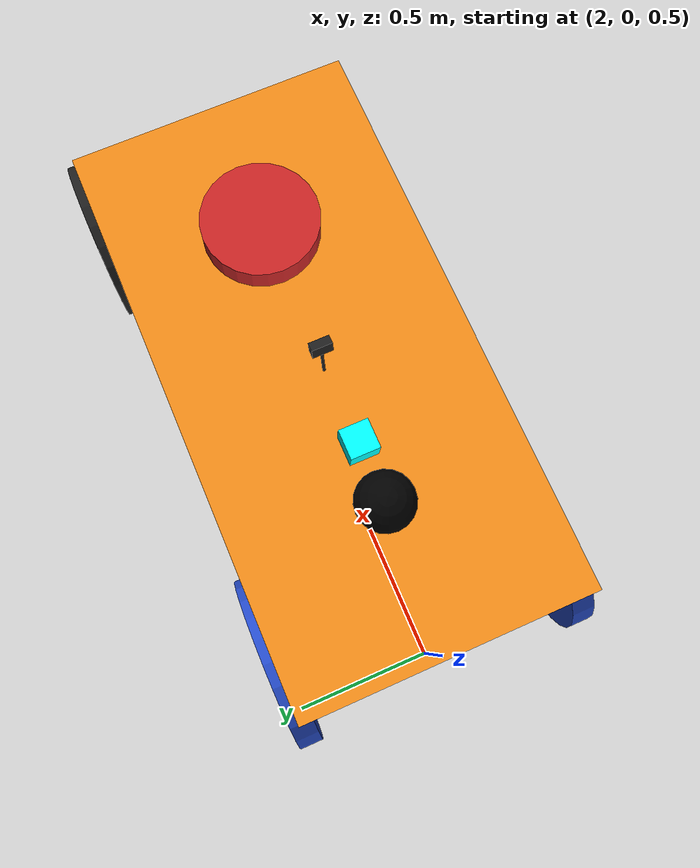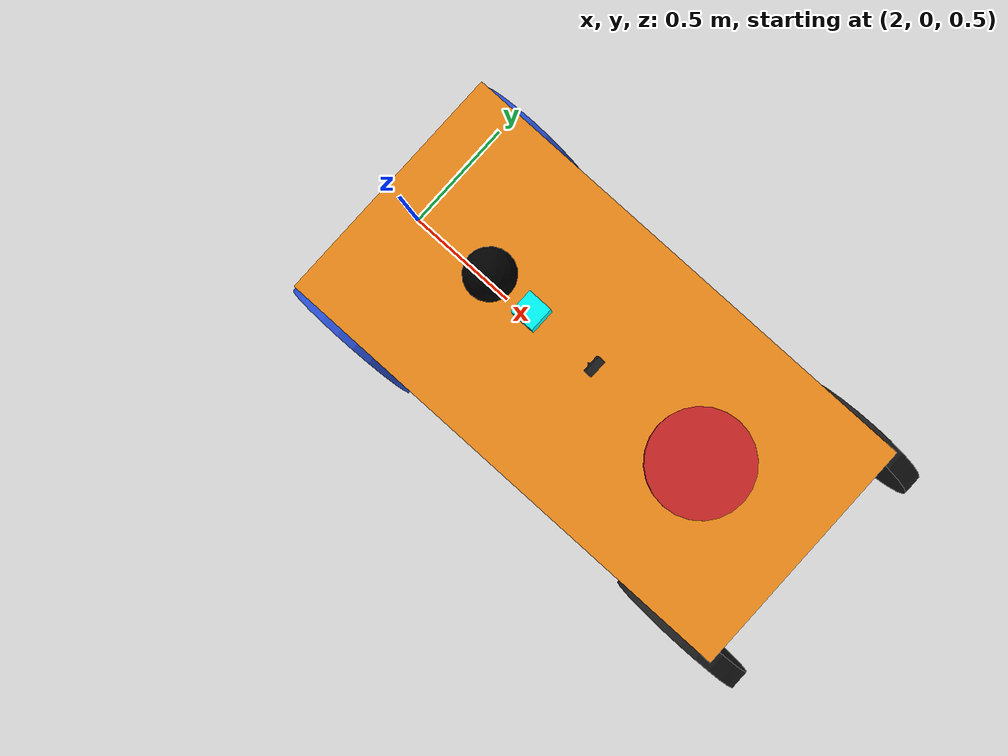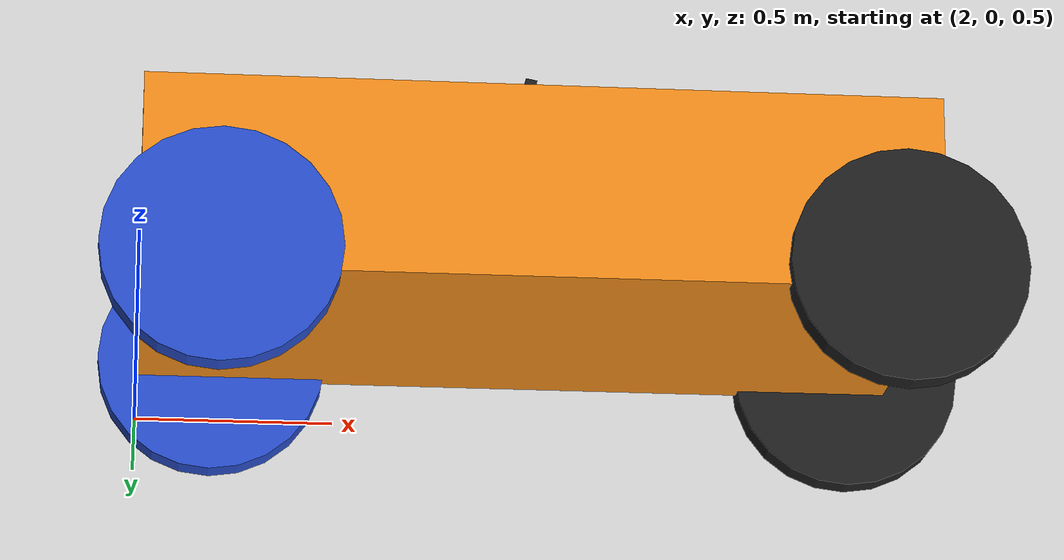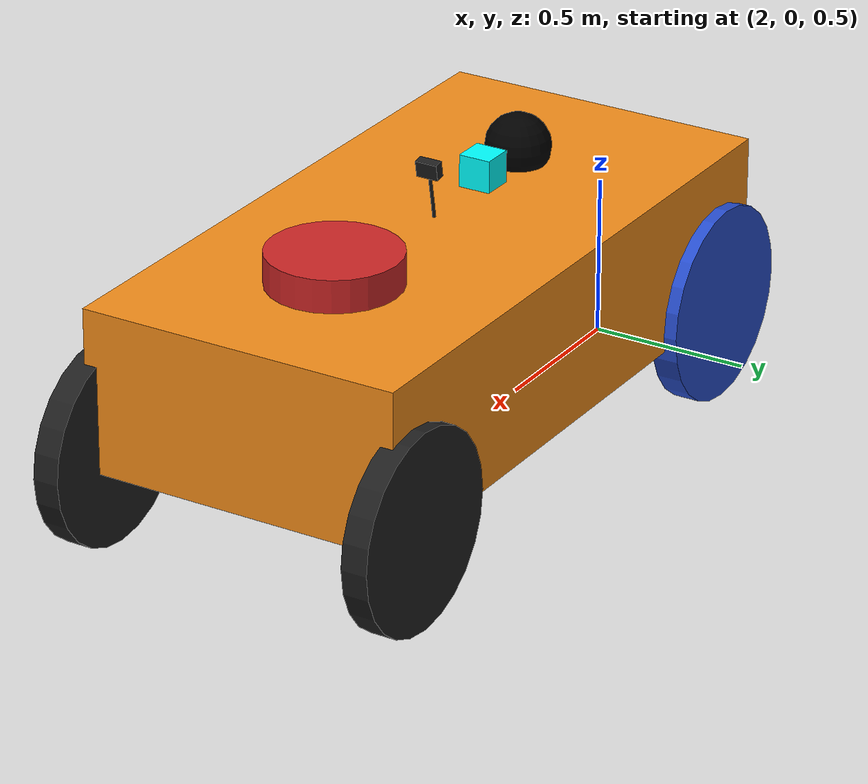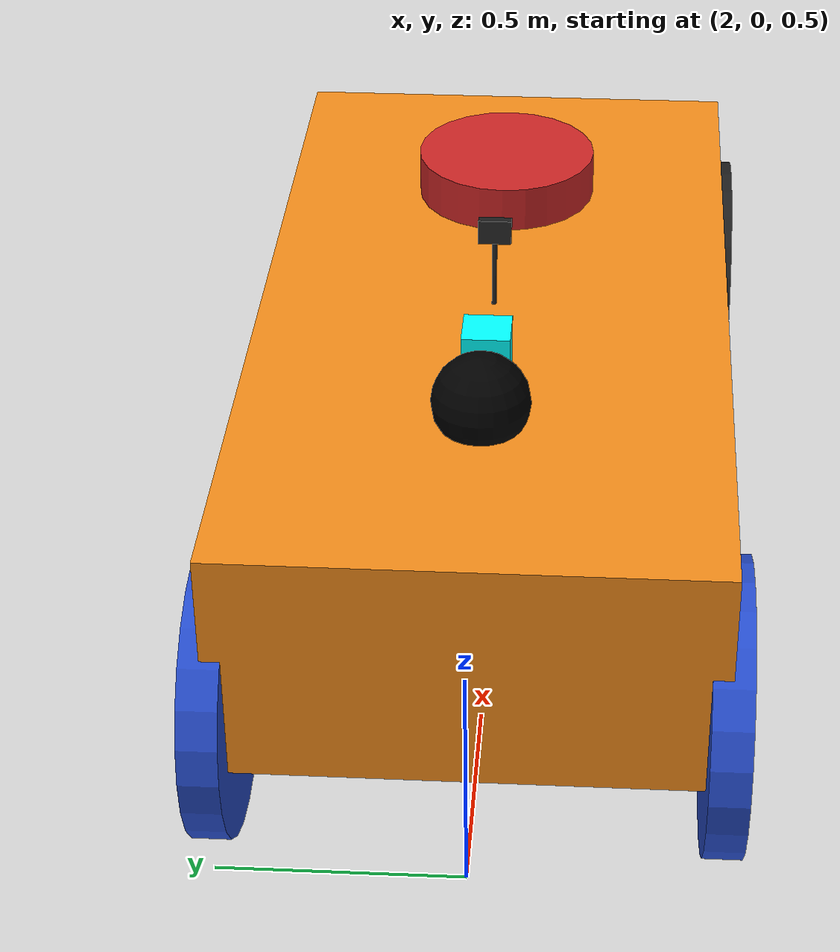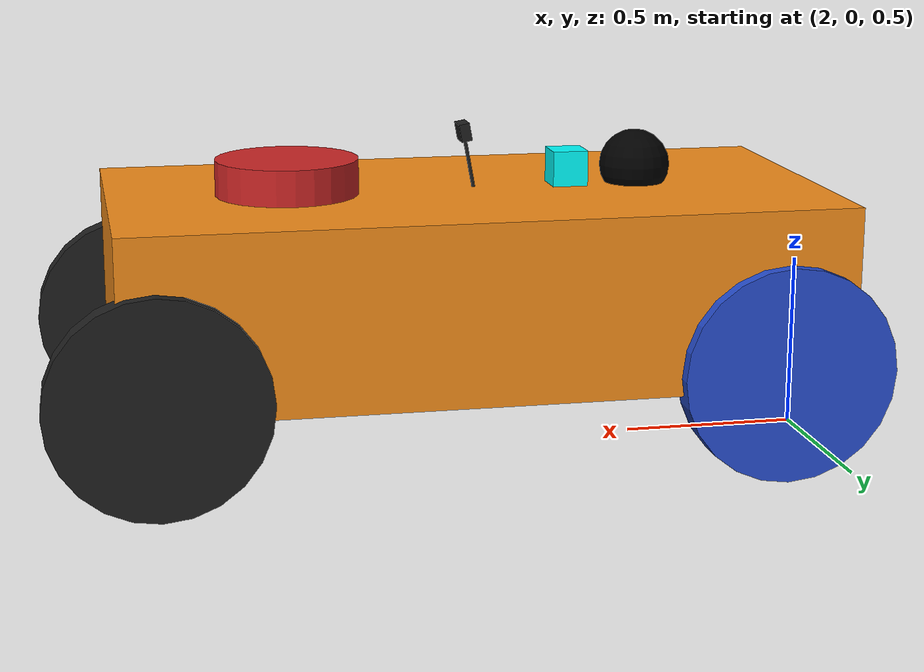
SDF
<sdf version='1.9'>
  <model name='ack_rover'>
    <link name='base_link'>
      <inertial>
        <pose>0.5242424242424243 0 1.063636363636363 0 0 0</pose>
        <mass>0.82499999999999996</mass>
        <inertia>
          <ixx>0.46807542424242432</ixx>
          <ixy>0</ixy>
          <ixz>0.25277272727272732</ixz>
          <iyy>1.0065905757575759</iyy>
          <iyz>1.688832850946975e-19</iyz>
          <izz>0.84784848484848452</izz>
        </inertia>
      </inertial>
      <collision name='base_link_fixed_joint_lump__chassis_collision'>
        <pose>0 0 0.75 0 0 0</pose>
        <geometry>
          <box>
            <size>2 1 0.5</size>
          </box>
        </geometry>
        <surface>
          <contact>
            <ode/>
          </contact>
          <friction>
            <ode/>
          </friction>
        </surface>
      </collision>
      <collision name='base_link_fixed_joint_lump__gnss_link_collision_1'>
        <pose>-0.5 0 1.3 0 0 0</pose>
        <geometry>
          <sphere>
            <radius>0.10000000000000001</radius>
          </sphere>
        </geometry>
        <surface>
          <contact>
            <ode/>
          </contact>
          <friction>
            <ode/>
          </friction>
        </surface>
      </collision>
      <collision name='base_link_fixed_joint_lump__imu_link_collision_2'>
        <pose>-0.3 0 1.3 0 0 0</pose>
        <geometry>
          <box>
            <size>0.1 0.1 0.1</size>
          </box>
        </geometry>
        <surface>
          <contact>
            <ode/>
          </contact>
          <friction>
            <ode/>
          </friction>
        </surface>
      </collision>
      <collision name='base_link_fixed_joint_lump__laser_frame_collision_3'>
        <pose>0.5 0 1.3 0 0 0</pose>
        <geometry>
          <cylinder>
            <length>0.055</length>
            <radius>0.050799999999999998</radius>
          </cylinder>
        </geometry>
        <surface>
          <contact>
            <ode/>
          </contact>
          <friction>
            <ode/>
          </friction>
        </surface>
      </collision>
      <visual name='base_link_fixed_joint_lump__chassis_visual'>
        <pose>0 0 1 0 0 0</pose>
        <geometry>
          <box>
            <size>2 1 0.5</size>
          </box>
        </geometry>
        <material>
          <script>
            <name>Gazebo/Orange</name>
            <uri>file://media/materials/scripts/gazebo.material</uri>
          </script>
          <diffuse>1 0.75 0 1</diffuse>
          <ambient>1 0.75 0 1</ambient>
        </material>
      </visual>
      <visual name='base_link_fixed_joint_lump__camera_link_visual_1'>
        <pose>0 0 1.41 0 0.18 0</pose>
        <geometry>
          <box>
            <size>0.03 0.07 0.05</size>
          </box>
        </geometry>
        <material>
          <script>
            <name>Gazebo/Black</name>
            <uri>file://media/materials/scripts/gazebo.material</uri>
          </script>
          <diffuse>0 1 1 1</diffuse>
          <ambient>0 1 1 1</ambient>
        </material>
      </visual>
      <visual name='base_link_fixed_joint_lump__camera_link_visual_2'>
        <pose>-0.01790295734258242 0 1.311615630721188 0 0.18 0</pose>
        <geometry>
          <cylinder>
            <length>0.20000000000000001</length>
            <radius>0.0050000000000000001</radius>
          </cylinder>
        </geometry>
        <material>
          <script>
            <name>Gazebo/Black</name>
            <uri>file://media/materials/scripts/gazebo.material</uri>
          </script>
          <diffuse>0 0 0 1</diffuse>
          <ambient>0 0 0 1</ambient>
        </material>
      </visual>
      <visual name='base_link_fixed_joint_lump__gnss_link_visual_3'>
        <pose>-0.5 0 1.3 0 0 0</pose>
        <geometry>
          <sphere>
            <radius>0.10000000000000001</radius>
          </sphere>
        </geometry>
        <material>
          <diffuse>0 0 0 1</diffuse>
          <ambient>0 0 0 1</ambient>
        </material>
      </visual>
      <visual name='base_link_fixed_joint_lump__imu_link_visual_4'>
        <pose>-0.3 0 1.3 0 0 0</pose>
        <geometry>
          <box>
            <size>0.1 0.1 0.1</size>
          </box>
        </geometry>
        <material>
          <diffuse>0 1 1 1</diffuse>
          <ambient>0 1 1 1</ambient>
        </material>
      </visual>
      <visual name='base_link_fixed_joint_lump__laser_frame_visual_5'>
        <pose>0.5 0 1.3 0 0 0</pose>
        <geometry>
          <cylinder>
            <length>0.10000000000000001</length>
            <radius>0.20000000000000001</radius>
          </cylinder>
        </geometry>
        <material>
          <script>
            <name>Gazebo/Red</name>
            <uri>file://media/materials/scripts/gazebo.material</uri>
          </script>
          <diffuse>1 0.25 0.25 1</diffuse>
          <ambient>1 0.25 0.25 1</ambient>
        </material>
      </visual>
      <sensor name='camera' type='camera'>
        <visualize>true</visualize>
        <update_rate>10</update_rate>
        <topic>camera</topic>
        <camera>
          <horizontal_fov>1.089</horizontal_fov>
          <image>
            <format>R8G8B8</format>
            <width>640</width>
            <height>480</height>
          </image>
          <clip>
            <near>0.050000000000000003</near>
            <far>8</far>
          </clip>
        </camera>
        <plugin name='ignition::gazebo::systems::Camera' filename='libgazebo_ros_camera.so'>
          <ignition_frame_id>camera_link_optical</ignition_frame_id>
        </plugin>
        <pose>0 0 1.41 0 0.18 0</pose>
      </sensor>
      <sensor name='depth_camera' type='rgbd_camera'>
        <always_on>true</always_on>
        <visualize>true</visualize>
        <update_rate>5</update_rate>
        <topic>depth_camera</topic>
        <camera>
          <horizontal_fov>1.0471980000000001</horizontal_fov>
          <image>
            <width>640</width>
            <height>480</height>
          </image>
          <clip>
            <near>0.050000000000000003</near>
            <far>3</far>
          </clip>
        </camera>
        <pose>0 0 1.41 0 0.18 0</pose>
        <ignition_frame_id>camera_link</ignition_frame_id>
        <baseline>0.2</baseline>
        <pointCloudCutoff>0.5</pointCloudCutoff>
        <pointCloudCutoffMax>3.0</pointCloudCutoffMax>
        <distortionK1>0</distortionK1>
        <distortionK2>0</distortionK2>
        <distortionK3>0</distortionK3>
        <distortionT1>0</distortionT1>
        <distortionT2>0</distortionT2>
        <CxPrime>0</CxPrime>
        <Cx>0</Cx>
        <Cy>0</Cy>
        <focalLength>0</focalLength>
        <hackBaseline>0</hackBaseline>
      </sensor>
      <sensor name='GazeboNavSat' type='navsat'>
        <always_on>true</always_on>
        <update_rate>25</update_rate>
        <visualize>true</visualize>
        <topic>gps/fix</topic>
        <pose>-0.5 0 1.3 0 -0 0</pose>
        <ignition_frame_id>gnss_link</ignition_frame_id>
      </sensor>
      <sensor name='imu_sensor' type='imu'>
        <plugin name='ignition::gazebo::systems::Imu' filename='libignition-gazebo-imu-system.so'>
          <initial_orientation_as_reference>false</initial_orientation_as_reference>
        </plugin>
        <always_on>true</always_on>
        <update_rate>100</update_rate>
        <visualize>true</visualize>
        <topic>/imu</topic>
        <enable_metrics>true</enable_metrics>
        <imu>
          <orientation_reference_frame>
            <localization>ENU</localization>
          </orientation_reference_frame>
          <angular_velocity>
            <x>
              <noise type='gaussian'>
                <mean>0</mean>
                <stddev>0.00020000000000000001</stddev>
                <bias_mean>7.5000000000000002e-06</bias_mean>
                <bias_stddev>7.9999999999999996e-07</bias_stddev>
              </noise>
            </x>
            <y>
              <noise type='gaussian'>
                <mean>0</mean>
                <stddev>0.00020000000000000001</stddev>
                <bias_mean>7.5000000000000002e-06</bias_mean>
                <bias_stddev>7.9999999999999996e-07</bias_stddev>
              </noise>
            </y>
            <z>
              <noise type='gaussian'>
                <mean>0</mean>
                <stddev>0.00020000000000000001</stddev>
                <bias_mean>7.5000000000000002e-06</bias_mean>
                <bias_stddev>7.9999999999999996e-07</bias_stddev>
              </noise>
            </z>
          </angular_velocity>
          <linear_acceleration>
            <x>
              <noise type='gaussian'>
                <mean>0</mean>
                <stddev>0.017000000000000001</stddev>
                <bias_mean>0.10000000000000001</bias_mean>
                <bias_stddev>0.001</bias_stddev>
              </noise>
            </x>
            <y>
              <noise type='gaussian'>
                <mean>0</mean>
                <stddev>0.017000000000000001</stddev>
                <bias_mean>0.10000000000000001</bias_mean>
                <bias_stddev>0.001</bias_stddev>
              </noise>
            </y>
            <z>
              <noise type='gaussian'>
                <mean>0</mean>
                <stddev>0.017000000000000001</stddev>
                <bias_mean>0.10000000000000001</bias_mean>
                <bias_stddev>0.001</bias_stddev>
              </noise>
            </z>
          </linear_acceleration>
        </imu>
        <pose>-0.3 0 1.3 0 -0 0</pose>
        <frame_id>imu_link</frame_id>
        <ignition_frame_id>imu_link</ignition_frame_id>
      </sensor>
      <sensor name='lidar' type='gpu_lidar'>
        <always_on>true</always_on>
        <visualize>true</visualize>
        <update_rate>10</update_rate>
        <topic>scan</topic>
        <ray>
          <scan>
            <horizontal>
              <samples>360</samples>
              <resolution>1</resolution>
              <min_angle>-3.1400000000000001</min_angle>
              <max_angle>3.1400000000000001</max_angle>
            </horizontal>
          </scan>
          <range>
            <min>0.29999999999999999</min>
            <max>12</max>
            <resolution>0.01</resolution>
          </range>
          <noise>
            <type>gaussian</type>
            <mean>0</mean>
            <stddev>0.01</stddev>
          </noise>
        </ray>
        <pose>0.5 0 1.3 0 -0 0</pose>
        <ignition_frame_id>laser_frame</ignition_frame_id>
      </sensor>
    </link>
    <joint name='left_wheel_steering_joint' type='revolute'>
      <pose relative_to='base_link'>0.9 -0.5 0.8 1.57 0 0</pose>
      <parent>base_link</parent>
      <child>left_wheel_steering</child>
      <axis>
        <xyz>0 1 0</xyz>
        <limit>
          <lower>-1.5700000000000001</lower>
          <upper>1.5700000000000001</upper>
          <effort>1000</effort>
          <velocity>30</velocity>
        </limit>
        <dynamics>
          <damping>0.20000000000000001</damping>
          <friction>0</friction>
          <spring_reference>0</spring_reference>
          <spring_stiffness>0</spring_stiffness>
        </dynamics>
      </axis>
    </joint>
    <link name='left_wheel_steering'>
      <pose relative_to='left_wheel_steering_joint'>0 0 0 0 0 0</pose>
      <inertial>
        <pose>0 0 0 0 0 0</pose>
        <mass>0.10000000000000001</mass>
        <inertia>
          <ixx>0</ixx>
          <ixy>0</ixy>
          <ixz>0</ixz>
          <iyy>0</iyy>
          <iyz>0</iyz>
          <izz>0</izz>
        </inertia>
      </inertial>
    </link>
    <joint name='front_left_wheel_joint' type='revolute'>
      <pose relative_to='left_wheel_steering'>0 0 0 0 0 0</pose>
      <parent>left_wheel_steering</parent>
      <child>front_left_wheel</child>
      <axis>
        <xyz>0 0 1</xyz>
        <limit>
          <lower>-10000000000000000</lower>
          <upper>10000000000000000</upper>
        </limit>
        <dynamics>
          <damping>0.20000000000000001</damping>
          <friction>0</friction>
          <spring_reference>0</spring_reference>
          <spring_stiffness>0</spring_stiffness>
        </dynamics>
      </axis>
    </joint>
    <link name='front_left_wheel'>
      <pose relative_to='front_left_wheel_joint'>0 0 0 0 0 0</pose>
      <inertial>
        <pose>0 0 0 0 0 0</pose>
        <mass>11.300000000000001</mass>
        <inertia>
          <ixx>0.26027666666666671</ixx>
          <ixy>0</ixy>
          <ixz>0</ixz>
          <iyy>0.26027666666666671</iyy>
          <iyz>0</iyz>
          <izz>0.50850000000000006</izz>
        </inertia>
      </inertial>
      <collision name='front_left_wheel_collision'>
        <pose>0 0 0 0 0 0</pose>
        <geometry>
          <cylinder>
            <length>0.080000000000000002</length>
            <radius>0.29999999999999999</radius>
          </cylinder>
        </geometry>
        <surface>
          <contact>
            <ode/>
          </contact>
          <friction>
            <ode/>
          </friction>
        </surface>
      </collision>
      <visual name='front_left_wheel_visual'>
        <pose>0 0 0 0 0 0</pose>
        <geometry>
          <cylinder>
            <length>0.080000000000000002</length>
            <radius>0.29999999999999999</radius>
          </cylinder>
        </geometry>
        <material>
          <script>
            <name>Gazebo/Black</name>
            <uri>file://media/materials/scripts/gazebo.material</uri>
          </script>
          <diffuse>0 0 0 1</diffuse>
          <ambient>0 0 0 1</ambient>
        </material>
      </visual>
    </link>
    <joint name='rear_left_wheel_joint' type='revolute'>
      <pose relative_to='base_link'>-0.8 0.5 0.8 -1.57 0 0</pose>
      <parent>base_link</parent>
      <child>rear_left_wheel</child>
      <axis>
        <xyz>0 0 1</xyz>
        <limit>
          <lower>-10000000000000000</lower>
          <upper>10000000000000000</upper>
        </limit>
        <dynamics>
          <damping>0.20000000000000001</damping>
          <friction>0</friction>
          <spring_reference>0</spring_reference>
          <spring_stiffness>0</spring_stiffness>
        </dynamics>
      </axis>
    </joint>
    <link name='rear_left_wheel'>
      <pose relative_to='rear_left_wheel_joint'>0 0 0 0 0 0</pose>
      <inertial>
        <pose>0 0 0 0 0 0</pose>
        <mass>11.300000000000001</mass>
        <inertia>
          <ixx>0.26027666666666671</ixx>
          <ixy>0</ixy>
          <ixz>0</ixz>
          <iyy>0.26027666666666671</iyy>
          <iyz>0</iyz>
          <izz>0.50850000000000006</izz>
        </inertia>
      </inertial>
      <collision name='rear_left_wheel_collision'>
        <pose>0 0 0 0 0 0</pose>
        <geometry>
          <cylinder>
            <length>0.080000000000000002</length>
            <radius>0.29999999999999999</radius>
          </cylinder>
        </geometry>
        <surface>
          <contact>
            <ode/>
          </contact>
          <friction>
            <ode/>
          </friction>
        </surface>
      </collision>
      <visual name='rear_left_wheel_visual'>
        <pose>0 0 0 0 0 0</pose>
        <geometry>
          <cylinder>
            <length>0.080000000000000002</length>
            <radius>0.29999999999999999</radius>
          </cylinder>
        </geometry>
        <material>
          <script>
            <name>Gazebo/Blue</name>
            <uri>file://media/materials/scripts/gazebo.material</uri>
          </script>
          <diffuse>0.25 0.25 1 1</diffuse>
          <ambient>0.25 0.25 1 1</ambient>
        </material>
      </visual>
    </link>
    <joint name='rear_right_wheel_joint' type='revolute'>
      <pose relative_to='base_link'>-0.8 -0.5 0.8 -1.57 0 0</pose>
      <parent>base_link</parent>
      <child>rear_right_wheel</child>
      <axis>
        <xyz>0 0 1</xyz>
        <limit>
          <lower>-10000000000000000</lower>
          <upper>10000000000000000</upper>
        </limit>
        <dynamics>
          <damping>0.20000000000000001</damping>
          <friction>0</friction>
          <spring_reference>0</spring_reference>
          <spring_stiffness>0</spring_stiffness>
        </dynamics>
      </axis>
    </joint>
    <link name='rear_right_wheel'>
      <pose relative_to='rear_right_wheel_joint'>0 0 0 0 0 0</pose>
      <inertial>
        <pose>0 0 0 0 0 0</pose>
        <mass>11.300000000000001</mass>
        <inertia>
          <ixx>0.26027666666666671</ixx>
          <ixy>0</ixy>
          <ixz>0</ixz>
          <iyy>0.26027666666666671</iyy>
          <iyz>0</iyz>
          <izz>0.50850000000000006</izz>
        </inertia>
      </inertial>
      <collision name='rear_right_wheel_collision'>
        <pose>0 0 0 0 0 0</pose>
        <geometry>
          <cylinder>
            <length>0.080000000000000002</length>
            <radius>0.29999999999999999</radius>
          </cylinder>
        </geometry>
        <surface>
          <contact>
            <ode/>
          </contact>
          <friction>
            <ode/>
          </friction>
        </surface>
      </collision>
      <visual name='rear_right_wheel_visual'>
        <pose>0 0 0 0 0 0</pose>
        <geometry>
          <cylinder>
            <length>0.080000000000000002</length>
            <radius>0.29999999999999999</radius>
          </cylinder>
        </geometry>
        <material>
          <script>
            <name>Gazebo/Blue</name>
            <uri>file://media/materials/scripts/gazebo.material</uri>
          </script>
          <diffuse>0.25 0.25 1 1</diffuse>
          <ambient>0.25 0.25 1 1</ambient>
        </material>
      </visual>
    </link>
    <joint name='right_wheel_steering_joint' type='revolute'>
      <pose relative_to='base_link'>0.9 0.5 0.8 1.57 0 0</pose>
      <parent>base_link</parent>
      <child>right_wheel_steering</child>
      <axis>
        <xyz>0 1 0</xyz>
        <limit>
          <lower>-1.5700000000000001</lower>
          <upper>1.5700000000000001</upper>
          <effort>1000</effort>
          <velocity>30</velocity>
        </limit>
        <dynamics>
          <damping>0.20000000000000001</damping>
          <friction>0</friction>
          <spring_reference>0</spring_reference>
          <spring_stiffness>0</spring_stiffness>
        </dynamics>
      </axis>
    </joint>
    <link name='right_wheel_steering'>
      <pose relative_to='right_wheel_steering_joint'>0 0 0 0 0 0</pose>
      <inertial>
        <pose>0 0 0 0 0 0</pose>
        <mass>0.10000000000000001</mass>
        <inertia>
          <ixx>0</ixx>
          <ixy>0</ixy>
          <ixz>0</ixz>
          <iyy>0</iyy>
          <iyz>0</iyz>
          <izz>0</izz>
        </inertia>
      </inertial>
    </link>
    <joint name='front_right_wheel_joint' type='revolute'>
      <pose relative_to='right_wheel_steering'>0 0 0 0 0 0</pose>
      <parent>right_wheel_steering</parent>
      <child>front_right_wheel</child>
      <axis>
        <xyz>0 0 1</xyz>
        <limit>
          <lower>-10000000000000000</lower>
          <upper>10000000000000000</upper>
        </limit>
        <dynamics>
          <damping>0.20000000000000001</damping>
          <friction>0</friction>
          <spring_reference>0</spring_reference>
          <spring_stiffness>0</spring_stiffness>
        </dynamics>
      </axis>
    </joint>
    <link name='front_right_wheel'>
      <pose relative_to='front_right_wheel_joint'>0 0 0 0 0 0</pose>
      <inertial>
        <pose>0 0 0 0 0 0</pose>
        <mass>11.300000000000001</mass>
        <inertia>
          <ixx>0.26027666666666671</ixx>
          <ixy>0</ixy>
          <ixz>0</ixz>
          <iyy>0.26027666666666671</iyy>
          <iyz>0</iyz>
          <izz>0.50850000000000006</izz>
        </inertia>
      </inertial>
      <collision name='front_right_wheel_collision'>
        <pose>0 0 0 0 0 0</pose>
        <geometry>
          <cylinder>
            <length>0.080000000000000002</length>
            <radius>0.29999999999999999</radius>
          </cylinder>
        </geometry>
        <surface>
          <contact>
            <ode/>
          </contact>
          <friction>
            <ode/>
          </friction>
        </surface>
      </collision>
      <visual name='front_right_wheel_visual'>
        <pose>0 0 0 0 0 0</pose>
        <geometry>
          <cylinder>
            <length>0.080000000000000002</length>
            <radius>0.29999999999999999</radius>
          </cylinder>
        </geometry>
        <material>
          <script>
            <name>Gazebo/Black</name>
            <uri>file://media/materials/scripts/gazebo.material</uri>
          </script>
          <diffuse>0 0 0 1</diffuse>
          <ambient>0 0 0 1</ambient>
        </material>
      </visual>
    </link>
    <pose>3.0 0.0 0.0 0 0 0</pose>
    <plugin name='ign_ros2_control::IgnitionROS2ControlPlugin' filename='ign_ros2_control-system'>
      <parameters>/home/brittc/Exodus2025/mobility_ctrl/install/nav2_stanley/share/nav2_stanley/config/ackermann_drive_controller.yaml</parameters>
      <ros>
        <remapping>/ackermann_steering_controller/tf_odometry:=/tf</remapping>
        <remapping>/ackermann_steering_controller/odometry:=/odom</remapping>
        <remapping>/ackermann_steering_controller/reference_unstamped:=/cmd_vel</remapping>
      </ros>
    </plugin>
    <plugin name='ignition::gazebo::systems::JointStatePublisher' filename='gz-sim-joint-state-publisher-system'>
      <topic>joint_states</topic>
    </plugin>
    <frame name='base_footprint_joint' attached_to='base_link'>
      <pose>0 0 0 0 -0 0</pose>
    </frame>
    <frame name='base_footprint' attached_to='base_footprint_joint'/>
    <frame name='camera_optical_joint' attached_to='camera_link'>
      <pose>0 0 0 -1.5708 -0 -1.5708</pose>
    </frame>
    <frame name='camera_link_optical' attached_to='camera_optical_joint'/>
    <frame name='camera_joint' attached_to='chassis'>
      <pose>0 0 0.91 0 0.18 0</pose>
    </frame>
    <frame name='camera_link' attached_to='camera_joint'/>
    <frame name='gnss_joint' attached_to='chassis'>
      <pose>-0.5 0 0.8 0 -0 0</pose>
    </frame>
    <frame name='gnss_link' attached_to='gnss_joint'/>
    <frame name='imu_joint' attached_to='chassis'>
      <pose>-0.3 0 0.8 0 -0 0</pose>
    </frame>
    <frame name='imu_link' attached_to='imu_joint'/>
    <frame name='laser_joint' attached_to='chassis'>
      <pose>0.5 0 0.8 0 -0 0</pose>
    </frame>
    <frame name='laser_frame' attached_to='laser_joint'/>
    <frame name='chassis_joint' attached_to='base_link'>
      <pose>0 0 0.5 0 -0 0</pose>
    </frame>
    <frame name='chassis' attached_to='chassis_joint'/>
  </model>
</sdf>
